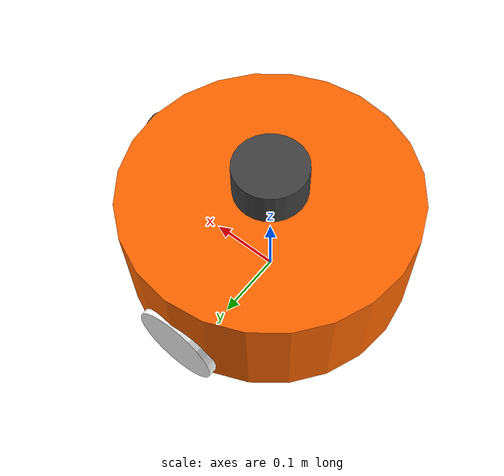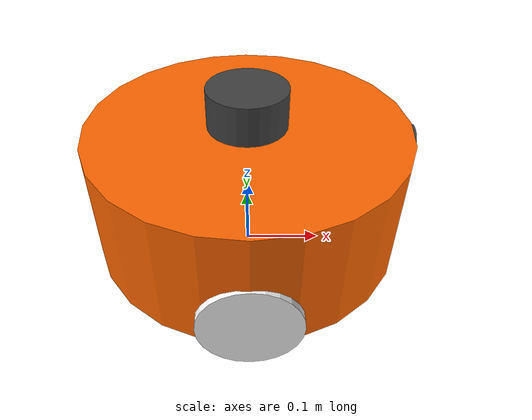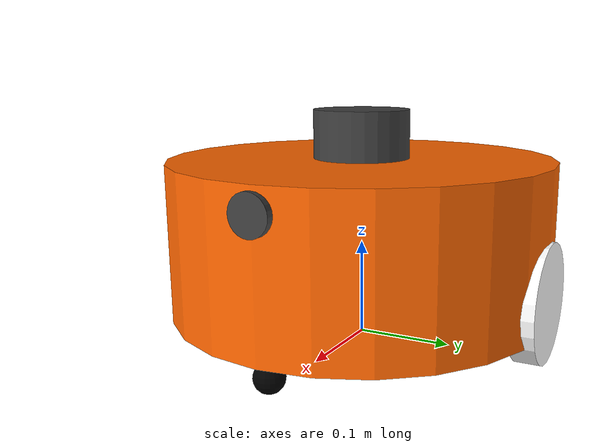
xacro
<?xml version="1.0"?>
<robot name="mbot_with_laser_camera" xmlns:xacro="http://www.ros.org/wiki/xacro">

    <xacro:include filename="$(find simulation_learning)/models/xacro/base.xacro" />
    <xacro:include filename="$(find simulation_learning)/models/xacro/sensors/laser.xacro" />
    <xacro:include filename="$(find simulation_learning)/models/xacro/sensors/camera.xacro" />

    <xacro:property name="laser_offset_x" value="0" />
    <xacro:property name="laser_offset_y" value="0" />
    <xacro:property name="laser_offset_z" value="0.105" />

    <xacro:property name="camera_offset_x" value="0.18" />
    <xacro:property name="camera_offset_y" value="0" />
    <xacro:property name="camera_offset_z" value="0.055" />

    <!-- 调用base宏 -->
    <xacro:mbot_base />

    <!-- laser_joint -->
    <joint name="laser_joint" type="fixed">
        <origin xyz="${laser_offset_x} ${laser_offset_y} ${laser_offset_z}" rpy="0 0 0" />
        <parent link="base_link" />
        <child link="laser_link" />
    </joint>

    <!-- 调用laser宏 -->
    <xacro:laser prefix="laser" />

    <!-- camera_joint -->
    <joint name="camera_joint" type="fixed">
        <origin xyz="${camera_offset_x} ${camera_offset_y} ${camera_offset_z}" rpy="0 0 0" />
        <parent link="base_link" />
        <child link="camera_link" />
    </joint>

    <!-- 调用Camera宏 -->
    <xacro:usb_camera prefix="camera" />

</robot>

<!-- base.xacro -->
<robot name="base" xmlns:xacro="http://www.ros.org/wiki/xacro">

    <!-- 属性列表 -->
    <xacro:property name="M_PI" value="3.1415926" />
    <xacro:property name="base_radius" value="0.20" />
    <xacro:property name="base_length" value="0.16" />

    <xacro:property name="wheel_radius" value="0.06" />
    <xacro:property name="wheel_length" value="0.025" />
    <xacro:property name="wheel_joint_y" value="0.19" />
    <xacro:property name="wheel_joint_z" value="0.05" />

    <xacro:property name="caster_radius" value="0.015" />
    <xacro:property name="caster_joint_x" value="0.18" />

    <!-- 颜色列表 -->
    <material name="yellow">
        <color rgba="1 0.4 0 1" />
    </material>
    <material name="black">
        <color rgba="0 0 0 0.95" />
    </material>
    <material name="gray">
        <color rgba="0.25 0.25 0.25 0.95" />
    </material>
    <material name="white">
        <color rgba="1 1 1 0.9" />
    </material>

    <!-- 轮子宏定义 -->
    <xacro:macro name="wheel" params="prefix reflect">
        <joint name="${prefix}_wheel_joint" type="continuous">
            <origin xyz="0 ${reflect*wheel_joint_y} ${-wheel_joint_z}" rpy="0 0 0" />
            <parent link="base_link" />
            <child link="${prefix}_wheel_link" />
            <axis xyz="0 1 0" />
        </joint>

        <link name="${prefix}_wheel_link">
            <visual>
                <origin xyz="0 0 0" rpy="${M_PI/2} 0 0" />
                <geometry>
                    <cylinder radius="${wheel_radius}" length="${wheel_length}" />
                </geometry>
                <material name="white" />
            </visual>
        </link>
    </xacro:macro>

    <!-- 脚轮宏定义 -->
    <xacro:macro name="caster" params="prefix reflect">
        <joint name="${prefix}_caster_joint" type="continuous">
            <origin xyz="${reflect*caster_joint_x} 0 ${-(base_length/2 + caster_radius)}"
                rpy="0 0 0" />
            <parent link="base_link" />
            <child link="${prefix}_caster_link" />
            <axis xyz="0 1 0" />
        </joint>

        <link name="${prefix}_caster_link">
            <visual>
                <origin xyz="0 0 0" rpy="0 0 0" />
                <geometry>
                    <sphere radius="${caster_radius}" />
                </geometry>
                <material name="black" />
            </visual>
        </link>
    </xacro:macro>

    <!-- 底盘宏定义 -->
    <xacro:macro name="mbot_base">
        <link name="base_footprint">
            <visual>
                <origin xyz="0 0 0" rpy="0 0 0" />
                <geometry>
                    <box size="0.001 0.001 0.001" />
                </geometry>
            </visual>
        </link>

        <joint name="base_footprint_joint" type="fixed">
            <origin xyz="0 0 ${base_length/2 + caster_radius*2}" rpy="0 0 0" />
            <parent link="base_footprint" />
            <child link="base_link" />
        </joint>

        <link name="base_link">
            <visual>
                <origin xyz="0 0 0" rpy="0 0 0" />
                <geometry>
                    <cylinder length="${base_length}" radius="${base_radius}" />
                </geometry>
                <material name="yellow" />
            </visual>
        </link>

        <!-- 调用轮子宏 -->
        <xacro:wheel prefix="left" reflect="-1" />
        <xacro:wheel prefix="right" reflect="1" />

        <!-- 调用脚轮宏 -->
        <xacro:caster prefix="front" reflect="-1" />
        <xacro:caster prefix="back" reflect="1" />
    </xacro:macro>

</robot>

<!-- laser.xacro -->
<robot name="laser" xmlns:xacro="http://www.ros.org/wiki/xacro">

    <xacro:macro name="laser" params="prefix:=laser">
        <link name="${prefix}_link">
            <visual>
                <origin xyz="0 0 0 " rpy="0 0 0" />
                <geometry>
                    <cylinder length="0.05" radius="0.05" />
                </geometry>
                <material name="gray">
                    <color rgba="0.25 0.25 0.25 0.95" />
                </material>
            </visual>
        </link>
    </xacro:macro>

</robot>

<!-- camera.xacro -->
<robot name="camera" xmlns:xacro="http://www.ros.org/wiki/xacro">

    <xacro:macro name="usb_camera" params="prefix:=camera">
        <link name="${prefix}_link">
            <visual>
                <origin xyz=" 0 0 0 " rpy="0 1.57 0" />
                <geometry>
                    <cylinder radius="0.02" length="0.05" />
                </geometry>
                <material name="gray">
                    <color rgba="0.25 0.25 0.25 0.95" />
                </material>
            </visual>
        </link>
    </xacro:macro>

</robot>
